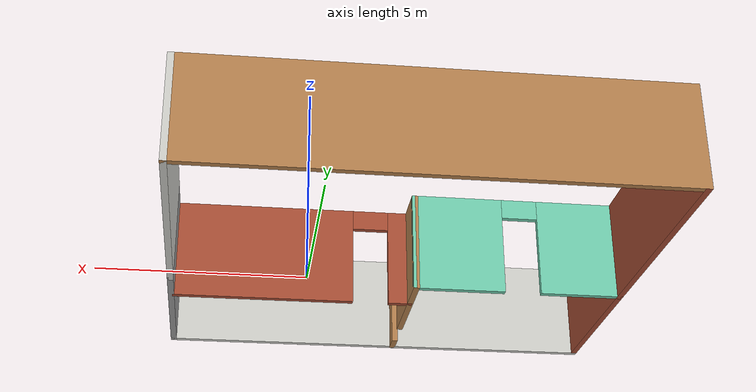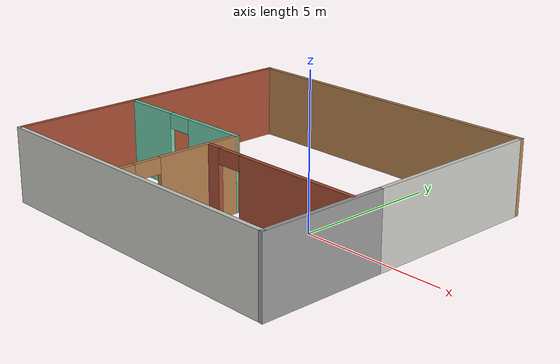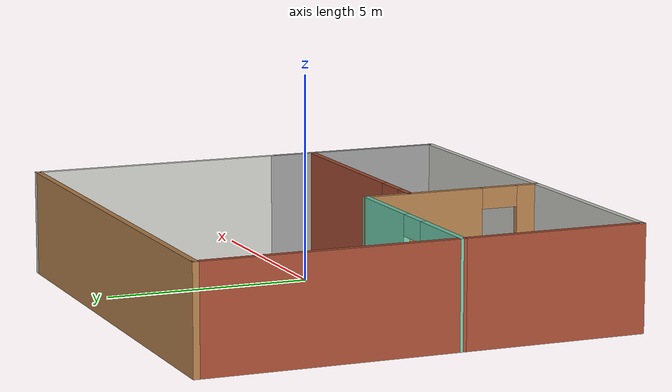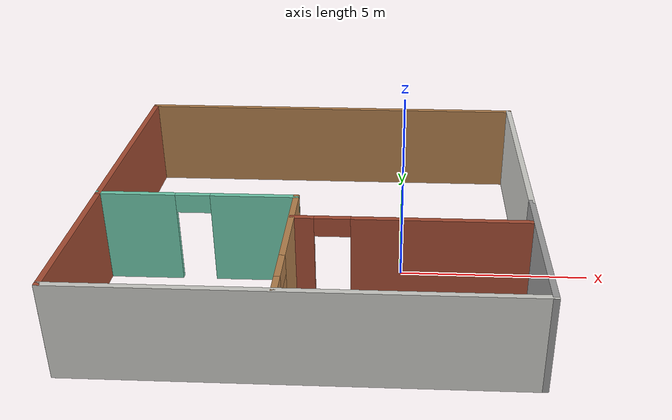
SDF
<?xml version='1.0'?>
<sdf version='1.7'>
  <model name='myworld'>
    <pose>-2.29399 0.431104 0 0 -0 0</pose>
    <link name='Wall_1'>
      <collision name='Wall_1_Collision'>
        <geometry>
          <box>
            <size>4.5 0.15 2.5</size>
          </box>
        </geometry>
        <pose>0 0 1.25 0 -0 0</pose>
      </collision>
      <visual name='Wall_1_Visual'>
        <pose>0 0 1.25 0 -0 0</pose>
        <geometry>
          <box>
            <size>4.5 0.15 2.5</size>
          </box>
        </geometry>
        <material>
          <script>
            <uri>file://media/materials/scripts/gazebo.material</uri>
            <name>Gazebo/Grey</name>
          </script>
          <ambient>1 1 1 1</ambient>
        </material>
        <meta>
          <layer>0</layer>
        </meta>
      </visual>
      <pose>5.55025 -3.04989 0 0 -0 -1.5708</pose>
    </link>
    <link name='Wall_10'>
      <collision name='Wall_10_Collision'>
        <geometry>
          <box>
            <size>6.25 0.15 2.5</size>
          </box>
        </geometry>
        <pose>0 0 1.25 0 -0 0</pose>
      </collision>
      <visual name='Wall_10_Visual'>
        <pose>0 0 1.25 0 -0 0</pose>
        <geometry>
          <box>
            <size>6.25 0.15 2.5</size>
          </box>
        </geometry>
        <material>
          <script>
            <uri>file://media/materials/scripts/gazebo.material</uri>
            <name>Gazebo/CeilingTiled</name>
          </script>
          <ambient>1 1 1 1</ambient>
        </material>
        <meta>
          <layer>0</layer>
        </meta>
      </visual>
      <pose>5.55025 2.1751 0 0 -0 1.5708</pose>
    </link>
    <link name='Wall_11'>
      <collision name='Wall_11_Collision'>
        <geometry>
          <box>
            <size>11.25 0.15 2.5</size>
          </box>
        </geometry>
        <pose>0 0 1.25 0 -0 0</pose>
      </collision>
      <visual name='Wall_11_Visual'>
        <pose>0 0 1.25 0 -0 0</pose>
        <geometry>
          <box>
            <size>11.25 0.15 2.5</size>
          </box>
        </geometry>
        <material>
          <script>
            <uri>file://media/materials/scripts/gazebo.material</uri>
            <name>Gazebo/Wood</name>
          </script>
          <ambient>1 1 1 1</ambient>
        </material>
        <meta>
          <layer>0</layer>
        </meta>
      </visual>
      <pose>0.000253 5.22511 0 0 -0 3.14159</pose>
    </link>
    <link name='Wall_15'>
      <pose>-0.428144 -3.03316 0 0 -0 -1.5708</pose>
      <visual name='Wall_15_Visual_0'>
        <pose>-0.749637 0 1.25 0 -0 0</pose>
        <geometry>
          <box>
            <size>3.00073 0.15 2.5</size>
          </box>
        </geometry>
        <material>
          <script>
            <uri>file://media/materials/scripts/gazebo.material</uri>
            <name>Gazebo/Wood</name>
          </script>
          <ambient>1 1 1 1</ambient>
        </material>
        <meta>
          <layer>0</layer>
        </meta>
      </visual>
      <collision name='Wall_15_Collision_0'>
        <geometry>
          <box>
            <size>3.00073 0.15 2.5</size>
          </box>
        </geometry>
        <pose>-0.749637 0 1.25 0 -0 0</pose>
      </collision>
      <visual name='Wall_15_Visual_1'>
        <pose>1.95036 0 1.25 0 -0 0</pose>
        <geometry>
          <box>
            <size>0.599273 0.15 2.5</size>
          </box>
        </geometry>
        <material>
          <script>
            <uri>file://media/materials/scripts/gazebo.material</uri>
            <name>Gazebo/Wood</name>
          </script>
          <ambient>1 1 1 1</ambient>
        </material>
        <meta>
          <layer>0</layer>
        </meta>
      </visual>
      <collision name='Wall_15_Collision_1'>
        <geometry>
          <box>
            <size>0.599273 0.15 2.5</size>
          </box>
        </geometry>
        <pose>1.95036 0 1.25 0 -0 0</pose>
      </collision>
      <visual name='Wall_15_Visual_2'>
        <pose>1.20073 0 2.25 0 -0 0</pose>
        <geometry>
          <box>
            <size>0.9 0.15 0.5</size>
          </box>
        </geometry>
        <material>
          <script>
            <uri>file://media/materials/scripts/gazebo.material</uri>
            <name>Gazebo/Wood</name>
          </script>
          <ambient>1 1 1 1</ambient>
        </material>
        <meta>
          <layer>0</layer>
        </meta>
      </visual>
      <collision name='Wall_15_Collision_2'>
        <geometry>
          <box>
            <size>0.9 0.15 0.5</size>
          </box>
        </geometry>
        <pose>1.20073 0 2.25 0 -0 0</pose>
      </collision>
    </link>
    <link name='Wall_17'>
      <pose>2.52528 -1.95037 0 0 -0 0</pose>
      <visual name='Wall_17_Visual_0'>
        <pose>-2.70036 0 1.25 0 -0 0</pose>
        <geometry>
          <box>
            <size>0.599278 0.15 2.5</size>
          </box>
        </geometry>
        <material>
          <script>
            <uri>file://media/materials/scripts/gazebo.material</uri>
            <name>Gazebo/Bricks</name>
          </script>
          <ambient>1 1 1 1</ambient>
        </material>
        <meta>
          <layer>0</layer>
        </meta>
      </visual>
      <collision name='Wall_17_Collision_0'>
        <geometry>
          <box>
            <size>0.599278 0.15 2.5</size>
          </box>
        </geometry>
        <pose>-2.70036 0 1.25 0 -0 0</pose>
      </collision>
      <visual name='Wall_17_Visual_1'>
        <pose>0.749639 0 1.25 0 -0 0</pose>
        <geometry>
          <box>
            <size>4.50072 0.15 2.5</size>
          </box>
        </geometry>
        <material>
          <script>
            <uri>file://media/materials/scripts/gazebo.material</uri>
            <name>Gazebo/Bricks</name>
          </script>
          <ambient>1 1 1 1</ambient>
        </material>
        <meta>
          <layer>0</layer>
        </meta>
      </visual>
      <collision name='Wall_17_Collision_1'>
        <geometry>
          <box>
            <size>4.50072 0.15 2.5</size>
          </box>
        </geometry>
        <pose>0.749639 0 1.25 0 -0 0</pose>
      </collision>
      <visual name='Wall_17_Visual_2'>
        <pose>-1.95072 0 2.25 0 -0 0</pose>
        <geometry>
          <box>
            <size>0.9 0.15 0.5</size>
          </box>
        </geometry>
        <material>
          <script>
            <uri>file://media/materials/scripts/gazebo.material</uri>
            <name>Gazebo/Bricks</name>
          </script>
          <ambient>1 1 1 1</ambient>
        </material>
        <meta>
          <layer>0</layer>
        </meta>
      </visual>
      <collision name='Wall_17_Collision_2'>
        <geometry>
          <box>
            <size>0.9 0.15 0.5</size>
          </box>
        </geometry>
        <pose>-1.95072 0 2.25 0 -0 0</pose>
      </collision>
    </link>
    <link name='Wall_19'>
      <pose>-2.98908 -0.866631 0 0 -0 -3.13828</pose>
      <visual name='Wall_19_Visual_0'>
        <pose>-1.49131 0 1.25 0 -0 0</pose>
        <geometry>
          <box>
            <size>2.28926 0.15 2.5</size>
          </box>
        </geometry>
        <material>
          <script>
            <uri>file://media/materials/scripts/gazebo.material</uri>
            <name>Gazebo/Grey</name>
          </script>
          <ambient>0.435294 0.796078 0.67451 1</ambient>
        </material>
        <meta>
          <layer>0</layer>
        </meta>
      </visual>
      <collision name='Wall_19_Collision_0'>
        <geometry>
          <box>
            <size>2.28926 0.15 2.5</size>
          </box>
        </geometry>
        <pose>-1.49131 0 1.25 0 -0 0</pose>
      </collision>
      <visual name='Wall_19_Visual_1'>
        <pose>1.59463 0 1.25 0 -0 0</pose>
        <geometry>
          <box>
            <size>2.08263 0.15 2.5</size>
          </box>
        </geometry>
        <material>
          <script>
            <uri>file://media/materials/scripts/gazebo.material</uri>
            <name>Gazebo/Grey</name>
          </script>
          <ambient>0.435294 0.796078 0.67451 1</ambient>
        </material>
        <meta>
          <layer>0</layer>
        </meta>
      </visual>
      <collision name='Wall_19_Collision_1'>
        <geometry>
          <box>
            <size>2.08263 0.15 2.5</size>
          </box>
        </geometry>
        <pose>1.59463 0 1.25 0 -0 0</pose>
      </collision>
      <visual name='Wall_19_Visual_2'>
        <pose>0.103317 0 2.25 0 -0 0</pose>
        <geometry>
          <box>
            <size>0.9 0.15 0.5</size>
          </box>
        </geometry>
        <material>
          <script>
            <uri>file://media/materials/scripts/gazebo.material</uri>
            <name>Gazebo/Grey</name>
          </script>
          <ambient>0.435294 0.796078 0.67451 1</ambient>
        </material>
        <meta>
          <layer>0</layer>
        </meta>
      </visual>
      <collision name='Wall_19_Collision_2'>
        <geometry>
          <box>
            <size>0.9 0.15 0.5</size>
          </box>
        </geometry>
        <pose>0.103317 0 2.25 0 -0 0</pose>
      </collision>
    </link>
    <link name='Wall_2'>
      <collision name='Wall_2_Collision'>
        <geometry>
          <box>
            <size>11.25 0.15 2.5</size>
          </box>
        </geometry>
        <pose>0 0 1.25 0 -0 0</pose>
      </collision>
      <visual name='Wall_2_Visual'>
        <pose>0 0 1.25 0 -0 0</pose>
        <geometry>
          <box>
            <size>11.25 0.15 2.5</size>
          </box>
        </geometry>
        <material>
          <script>
            <uri>file://media/materials/scripts/gazebo.material</uri>
            <name>Gazebo/CeilingTiled</name>
          </script>
          <ambient>0.203922 0.396078 0.643137 1</ambient>
        </material>
        <meta>
          <layer>0</layer>
        </meta>
      </visual>
      <pose>0.000124 -5.225 0 0 -0 -3.14157</pose>
    </link>
    <link name='Wall_5'>
      <collision name='Wall_5_Collision'>
        <geometry>
          <box>
            <size>4.5 0.15 2.5</size>
          </box>
        </geometry>
        <pose>0 0 1.25 0 -0 0</pose>
      </collision>
      <visual name='Wall_5_Visual'>
        <pose>0 0 1.25 0 -0 0</pose>
        <geometry>
          <box>
            <size>4.5 0.15 2.5</size>
          </box>
        </geometry>
        <material>
          <script>
            <uri>file://media/materials/scripts/gazebo.material</uri>
            <name>Gazebo/Bricks</name>
          </script>
          <ambient>0.996078 0.47451 0.0196078 1</ambient>
        </material>
        <meta>
          <layer>0</layer>
        </meta>
      </visual>
      <pose>-5.55001 -3.0501 0 0 -0 1.5708</pose>
    </link>
    <link name='Wall_8'>
      <collision name='Wall_8_Collision'>
        <geometry>
          <box>
            <size>6.25 0.15 2.5</size>
          </box>
        </geometry>
        <pose>0 0 1.25 0 -0 0</pose>
      </collision>
      <visual name='Wall_8_Visual'>
        <pose>0 0 1.25 0 -0 0</pose>
        <geometry>
          <box>
            <size>6.25 0.15 2.5</size>
          </box>
        </geometry>
        <material>
          <script>
            <uri>file://media/materials/scripts/gazebo.material</uri>
            <name>Gazebo/Bricks</name>
          </script>
          <ambient>1 1 1 1</ambient>
        </material>
        <meta>
          <layer>0</layer>
        </meta>
      </visual>
      <pose>-5.54988 2.175 0 0 -0 1.57075</pose>
    </link>
    <static>1</static>
  </model>
</sdf>
